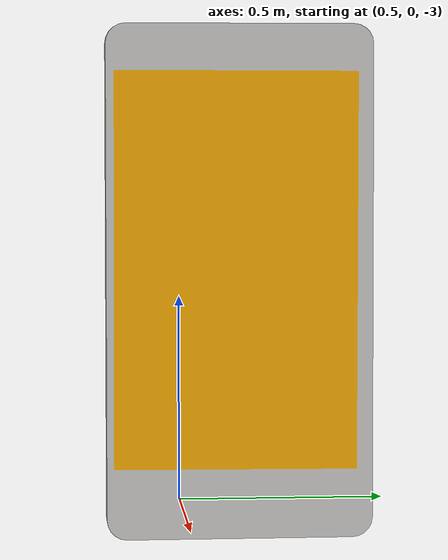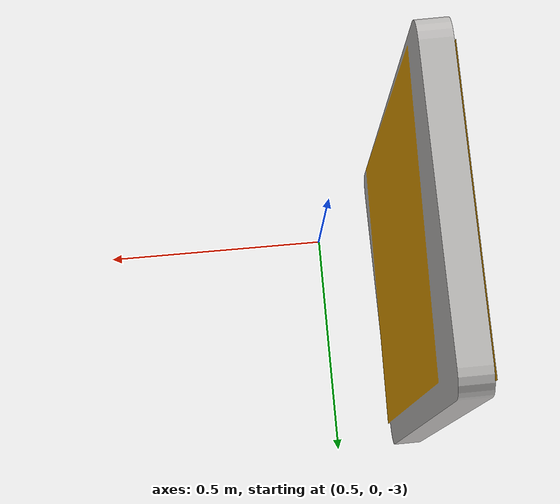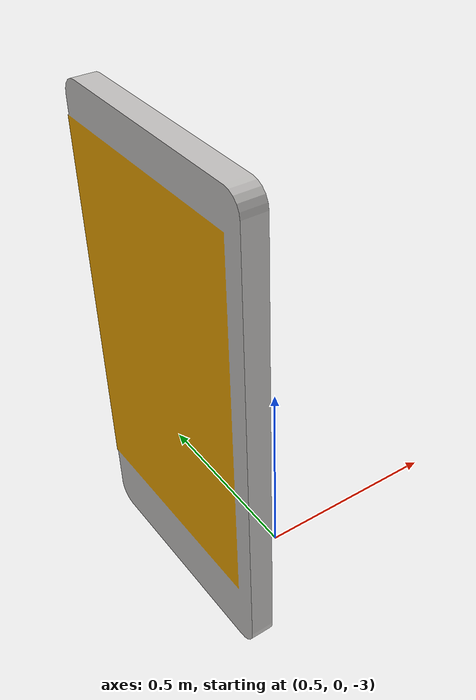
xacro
<?xml version="1.0"?>
<robot name="buoy_1" xmlns:xacro="http://www.ros.org/wiki/xacro">

<!-- Introducir meshes -->
<xacro:property name="visual_mesh_file" value="file://$(find uuv_world)/models/meshes/buoy1.dae" />

<link name="buoy1_base">
    <visual>
        <origin xyz="14.349550 -1.744834 -3.126359" rpy="0.0 0.0 1.57"/>
        <geometry>
            <mesh filename="${visual_mesh_file}" scale="1 1 1" />
        </geometry>
    </visual>

        <!-- Se deben cambiar los parametros reales-->
    <collision>
      <origin xyz="14.349550 -1.744834 -3.126359" rpy="0.0 0.0 1.57"/>
      <geometry>
        <mesh filename="${visual_mesh_file}" scale="1 1 1" />
      </geometry>
    </collision>

    <inertial>
      <origin xyz="14.349550 -1.744834 -3.126359" rpy="0.0 0.0 1.57"/>
      <mass value="1"/>
      <inertia
        ixx="1.0" ixy="0.0" ixz="0.0"
        iyy="1.0" iyz="0.0"
        izz="1.0"/>
    </inertial>

</link>

</robot>
